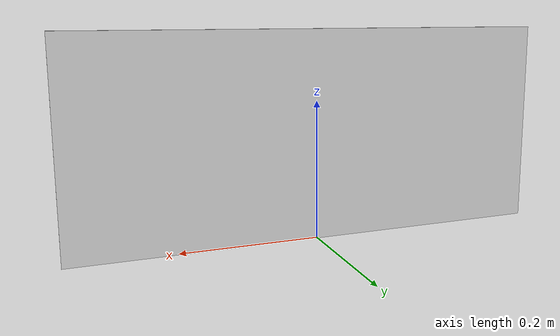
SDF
<?xml version="1.0" ?>
<sdf version="1.6">
  <model name="DessertBoard">
    <static>true</static>
    <link name="board_link">
      <visual name="board_visual">
        <geometry>
          <box>
            <size>0.7 0.3 0.005</size>
          </box>
        </geometry>
        <pose>0 0 0.15 1.5708 0 0</pose>
        <material>
          <script>
            <uri>model://dessert3_board/materials/scripts</uri>
            <uri>model://dessert3_board/materials/textures</uri>
            <name>DessertBoard</name>
          </script>
        </material>
      </visual>
      <collision name="board_collision">
        <geometry>
          <box>
            <size>0.5 0.3 0.005</size>
          </box>
        </geometry>
        <pose>0 0 0.15 1.5708 0 0</pose>
      </collision>
    </link>
  </model>
</sdf>
